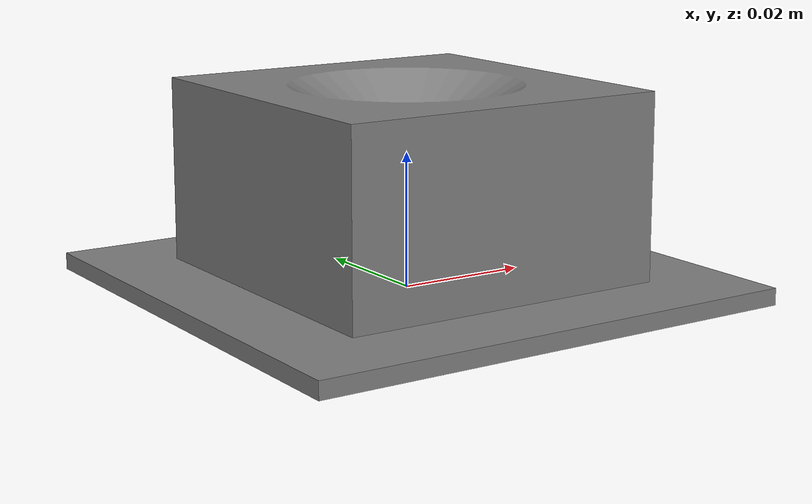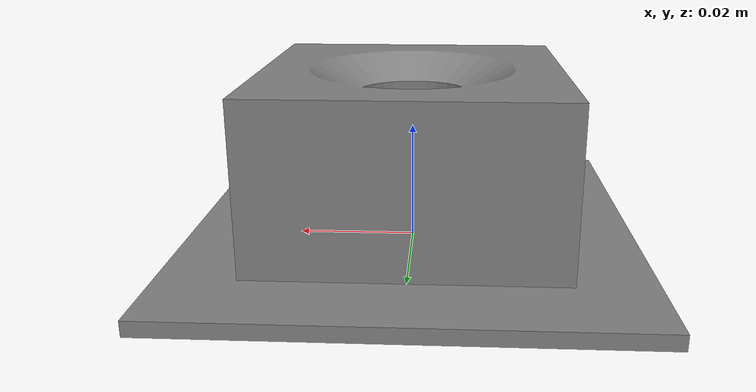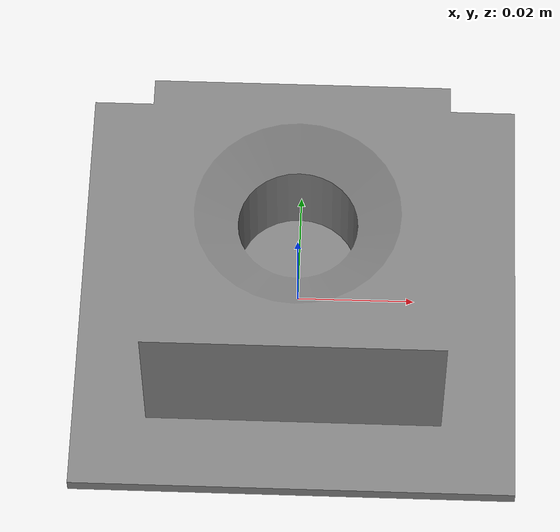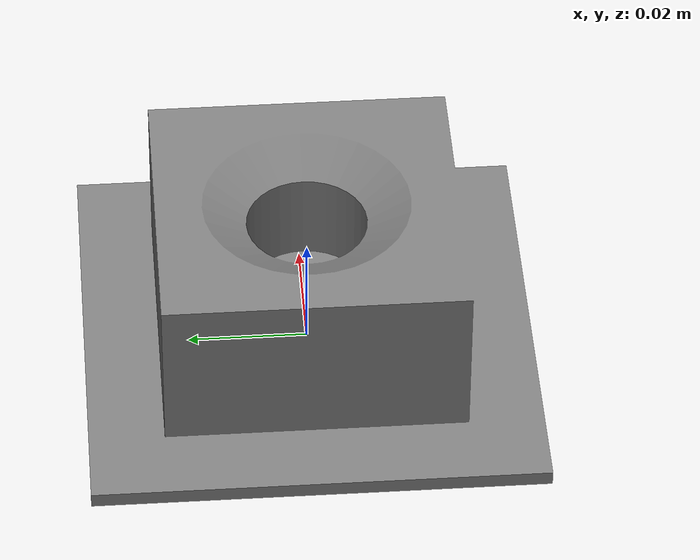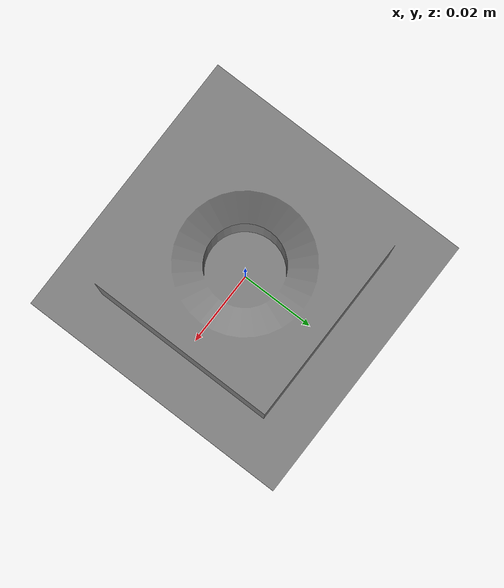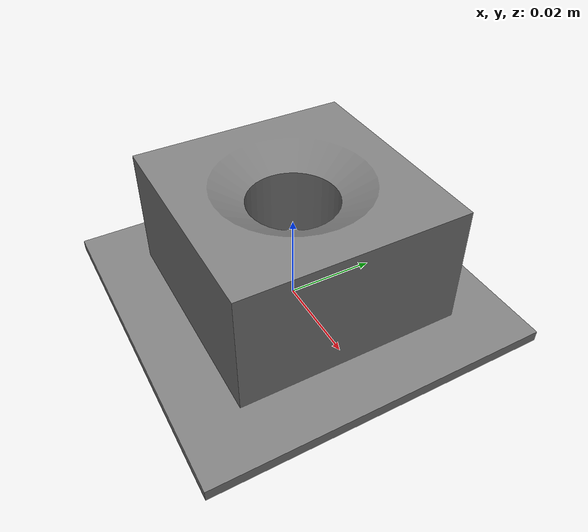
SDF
<?xml version="1.0" ?>
<sdf version="1.7">
  <model name="hole">
    <static>true</static>

    <link name="hole_link">
      <pose>0 0 0 0 0 0</pose>

      <visual name="hole_visual">
        <geometry>
          <mesh>
            <uri>hole.stl</uri>
          </mesh>
        </geometry>

        <material>
          <ambient>0.5 0.5 0.5 1</ambient>
          <diffuse>0.5 0.5 0.5 1</diffuse>
          <specular>0.1 0.1 0.1 1</specular>
          <emissive>0 0 0 1</emissive>
        </material>
      </visual>

      <collision name="hole_collision">
        <geometry>
          <mesh>
            <uri>hole.stl</uri>
          </mesh>
        </geometry>
      </collision>
    </link>
  </model>
</sdf>
